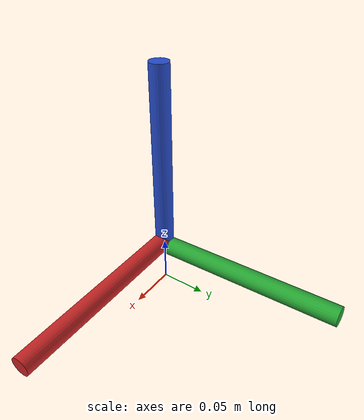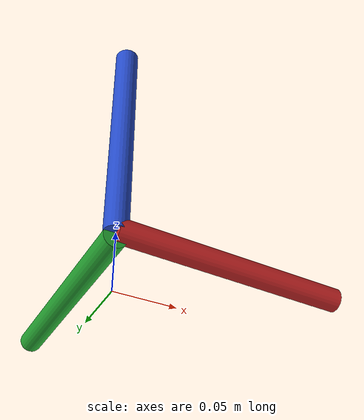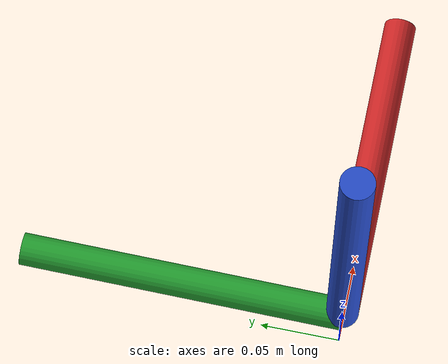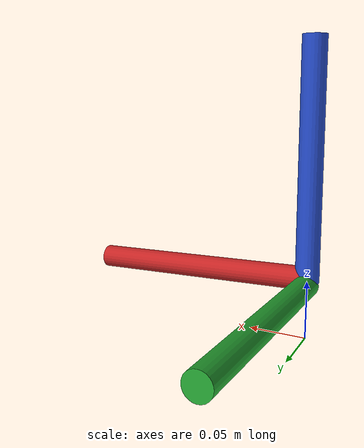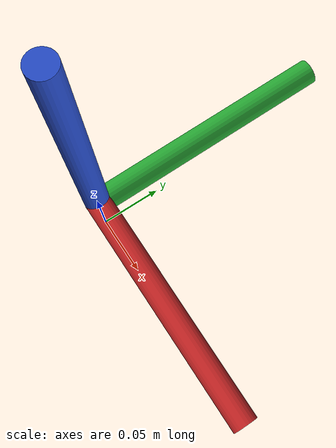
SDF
<?xml version="1.0" ?>
<sdf version="1.4">
  <model name="test_axis">
    <static>false</static>
    <link name="link_cube">
      <gravity> 0 </gravity>
      <pose>0 0 0.05 0 0 0</pose>

      <visual name="axis_x">
        <pose>0.1 0 0 0 1.6 0</pose>
        <geometry>
          <cylinder>
              <radius>.01</radius>
              <length>.2</length>
            </cylinder>
        </geometry>
        <material>
          <script>
            <uri>file://media/materials/scripts/gazebo.material</uri>
            <name>Gazebo/Red</name>
          </script>
        </material>
      </visual>

      <visual name="axis_y">
        <pose>0 0.1 0 1.6 0 0</pose>
        <geometry>
          <cylinder>
              <radius>.01</radius>
              <length>.2</length>
            </cylinder>
        </geometry>
        <material>
          <script>
            <uri>file://media/materials/scripts/gazebo.material</uri>
            <name>Gazebo/Green</name>
          </script>
        </material>
      </visual>

      <visual name="axis_z">
        <pose>0 0 0.1 0 0 0</pose>
        <geometry>
          <cylinder>
              <radius>.01</radius>
              <length>.2</length>
            </cylinder>
        </geometry>
        <material>
          <script>
            <uri>file://media/materials/scripts/gazebo.material</uri>
            <name>Gazebo/Blue</name>
          </script>
        </material>
      </visual>
    </link>
  </model>
</sdf>
